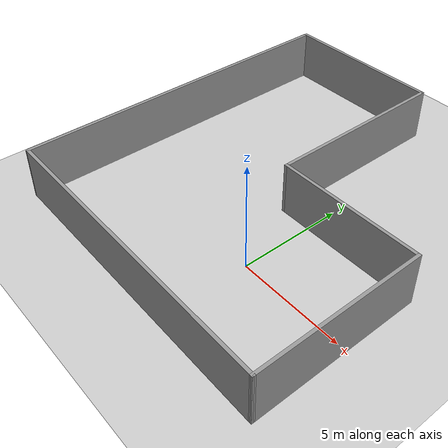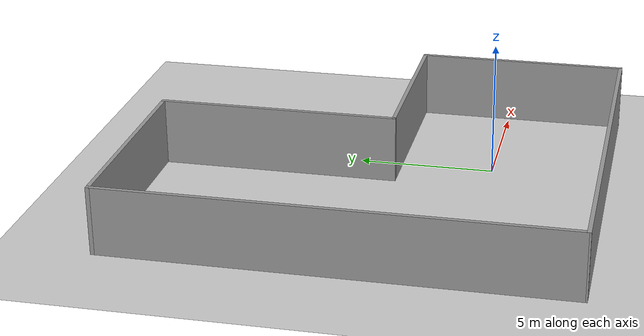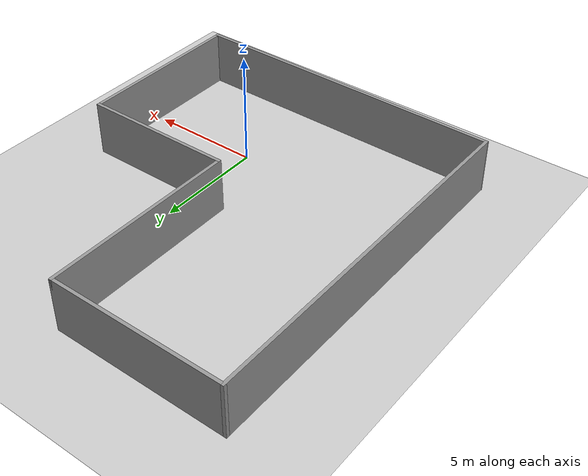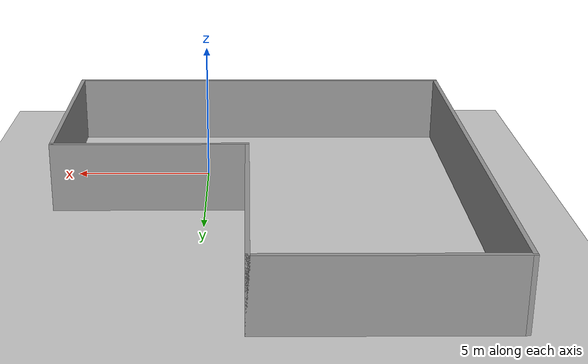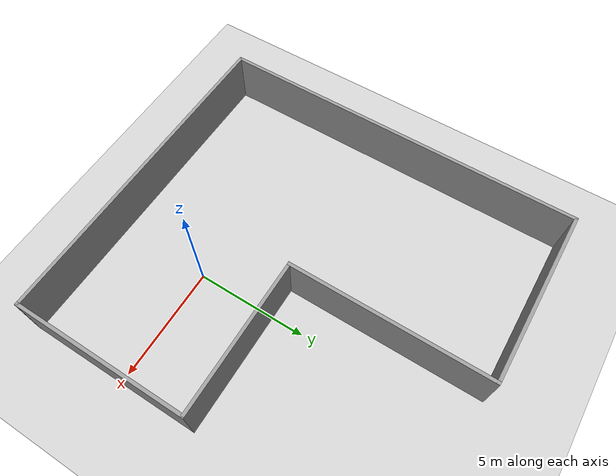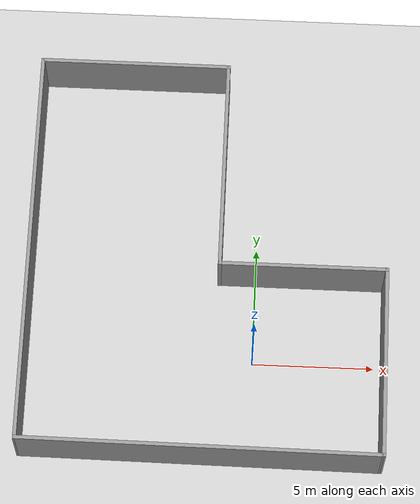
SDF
<?xml version="1.0" ?>
<sdf version="1.5">
  <world name="default">
    <!-- A global light source -->
    <include>
      <uri>model://sun</uri>
    </include>
    <!-- A ground plane -->
    <include>
      <uri>model://ground_plane</uri>
    </include>

    <include>
        <uri>file:///home/jbeta/robotics/warehouse_robot/dev_ws/src/warehouse_robot/worlds/warehouse_building</uri>
        <pose>-2.0 4 0 0 0 0</pose>
    </include>
  </world>
</sdf>

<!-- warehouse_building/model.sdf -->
<sdf version='1.7'>
  <model name='warehouse_building'>
    <pose>-2.0 4.0 0 0 -0 0</pose>
    <link name='Wall_0'>
      <collision name='Wall_0_Collision'>
        <geometry>
          <box>
            <size>8 0.15 2.5</size>
          </box>
        </geometry>
        <pose>0 0 1.25 0 -0 0</pose>
      </collision>
      <visual name='Wall_0_Visual'>
        <pose>0 0 1.25 0 -0 0</pose>
        <geometry>
          <box>
            <size>8 0.15 2.5</size>
          </box>
        </geometry>
        <material>
          <script>
            <uri>file://media/materials/scripts/gazebo.material</uri>
            <name>Gazebo/Grey</name>
          </script>
          <ambient>1 1 1 1</ambient>
        </material>
        <meta>
          <layer>0</layer>
        </meta>
      </visual>
      <pose>-3.425 8.35025 0 0 -0 0</pose>
    </link>
    <link name='Wall_1'>
      <collision name='Wall_1_Collision'>
        <geometry>
          <box>
            <size>9 0.15 2.5</size>
          </box>
        </geometry>
        <pose>0 0 1.25 0 -0 0</pose>
      </collision>
      <visual name='Wall_1_Visual'>
        <pose>0 0 1.25 0 -0 0</pose>
        <geometry>
          <box>
            <size>9 0.15 2.5</size>
          </box>
        </geometry>
        <material>
          <script>
            <uri>file://media/materials/scripts/gazebo.material</uri>
            <name>Gazebo/Grey</name>
          </script>
          <ambient>1 1 1 1</ambient>
        </material>
        <meta>
          <layer>0</layer>
        </meta>
      </visual>
      <pose>0.5 3.92525 0 0 -0 -1.5708</pose>
    </link>
    <link name='Wall_2'>
      <collision name='Wall_2_Collision'>
        <geometry>
          <box>
            <size>7 0.15 2.5</size>
          </box>
        </geometry>
        <pose>0 0 1.25 0 -0 0</pose>
      </collision>
      <visual name='Wall_2_Visual'>
        <pose>0 0 1.25 0 -0 0</pose>
        <geometry>
          <box>
            <size>7 0.15 2.5</size>
          </box>
        </geometry>
        <material>
          <script>
            <uri>file://media/materials/scripts/gazebo.material</uri>
            <name>Gazebo/Grey</name>
          </script>
          <ambient>1 1 1 1</ambient>
        </material>
        <meta>
          <layer>0</layer>
        </meta>
      </visual>
      <pose>3.925 -0.499746 0 0 -0 0</pose>
    </link>
    <link name='Wall_3'>
      <collision name='Wall_3_Collision'>
        <geometry>
          <box>
            <size>8 0.15 2.5</size>
          </box>
        </geometry>
        <pose>0 0 1.25 0 -0 0</pose>
      </collision>
      <visual name='Wall_3_Visual'>
        <pose>0 0 1.25 0 -0 0</pose>
        <geometry>
          <box>
            <size>8 0.15 2.5</size>
          </box>
        </geometry>
        <material>
          <script>
            <uri>file://media/materials/scripts/gazebo.material</uri>
            <name>Gazebo/Grey</name>
          </script>
          <ambient>1 1 1 1</ambient>
        </material>
        <meta>
          <layer>0</layer>
        </meta>
      </visual>
      <pose>7.35 -4.42475 0 0 -0 -1.5708</pose>
    </link>
    <link name='Wall_7'>
      <collision name='Wall_7_Collision'>
        <geometry>
          <box>
            <size>16.75 0.15 2.5</size>
          </box>
        </geometry>
        <pose>0 0 1.25 0 -0 0</pose>
      </collision>
      <visual name='Wall_7_Visual'>
        <pose>0 0 1.25 0 -0 0</pose>
        <geometry>
          <box>
            <size>16.75 0.15 2.5</size>
          </box>
        </geometry>
        <material>
          <script>
            <uri>file://media/materials/scripts/gazebo.material</uri>
            <name>Gazebo/Grey</name>
          </script>
          <ambient>1 1 1 1</ambient>
        </material>
        <meta>
          <layer>0</layer>
        </meta>
      </visual>
      <pose>-7.35 0.050254 0 0 -0 -1.5708</pose>
    </link>
    <link name='Wall_9'>
      <collision name='Wall_9_Collision'>
        <geometry>
          <box>
            <size>14.8503 0.15 2.5</size>
          </box>
        </geometry>
        <pose>0 0 1.25 0 -0 0</pose>
      </collision>
      <visual name='Wall_9_Visual'>
        <pose>0 0 1.25 0 -0 0</pose>
        <geometry>
          <box>
            <size>14.8503 0.15 2.5</size>
          </box>
        </geometry>
        <material>
          <script>
            <uri>file://media/materials/scripts/gazebo.material</uri>
            <name>Gazebo/Grey</name>
          </script>
          <ambient>1 1 1 1</ambient>
        </material>
        <meta>
          <layer>0</layer>
        </meta>
      </visual>
      <pose>0 -8.29975 0 0 -0 -0.006803</pose>
    </link>
    <static>1</static>
  </model>
</sdf>
